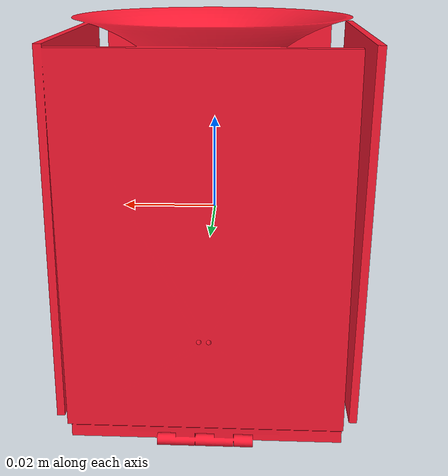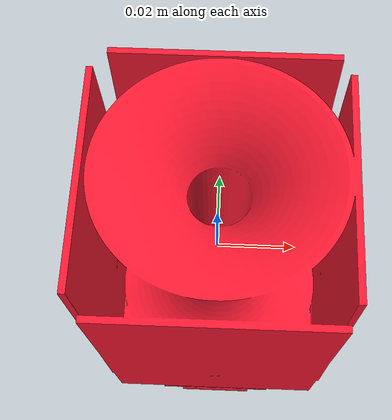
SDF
<?xml version="1.0"?>
<sdf version="1.5">
    <model name="sample_probe">
<pose frame=''>0 0 0 1.57046 3.7e-05 -0.00352</pose>
       <link name='base_link'>
      <self_collide>0</self_collide>
      <kinematic>1</kinematic>
      <velocity_decay/>
      <gravity>1</gravity>
      <visual name="visual">
          <geometry>
            <mesh>
          <uri>model://sample_probe/meshes/sample_probe.dae</uri>
	</mesh>
          </geometry>
<material> <!-- Wheel material -->
          <ambient>0.1 0.1 0.1 1</ambient>
          <diffuse>1 0.1 0.2 1</diffuse>
          <specular>0 0 0 0</specular>
          <emissive>0 0 0 1</emissive>
        </material> <!-- End wheel material -->
        </visual>
<collision name='base_link_inertia_collision'>
        <laser_retro>0</laser_retro>
        <max_contacts>1</max_contacts>
        <geometry>
          <mesh>
            <uri>model://sample_probe/meshes/sample_probe.dae</uri>
       </mesh>
        </geometry>
        <surface>
          <friction>
            <ode>
              <mu>1</mu>
           <mu2>1</mu2>
              <fdir1>0 0 0</fdir1>
              <slip1>0</slip1>
              <slip2>0</slip2>
            </ode>
          </friction>
          <bounce>
            <restitution_coefficient>0</restitution_coefficient>
            <threshold>1e+06</threshold>
          </bounce>
          <contact>
            <collide_without_contact>0</collide_without_contact>
            <collide_without_contact_bitmask>1</collide_without_contact_bitmask>
            <collide_bitmask>1</collide_bitmask>
            <ode>
              <soft_cfm>0</soft_cfm>
              <soft_erp>0.2</soft_erp>
              <kp>1e+13</kp>
              <kd>1</kd>
              <max_vel>0.01</max_vel>
              <min_depth>0</min_depth>
            </ode>
            <bullet>
              <split_impulse>1</split_impulse>
              <split_impulse_penetration_threshold>-0.01</split_impulse_penetration_threshold>
              <soft_cfm>0</soft_cfm>
              <soft_erp>0.2</soft_erp>
              <kp>1e+13</kp>
              <kd>1</kd>
            </bullet>
          </contact>
        </surface>
      </collision>
</link>
    </model>
 </sdf>
